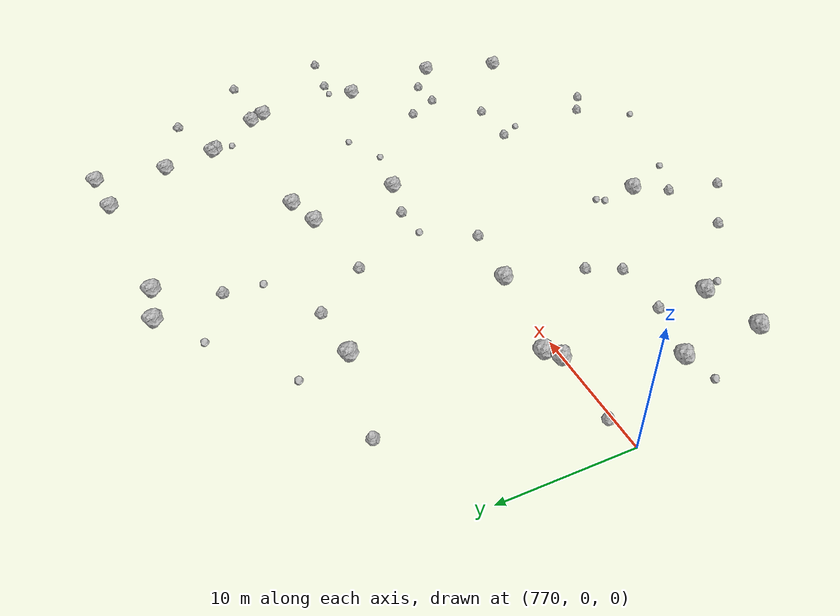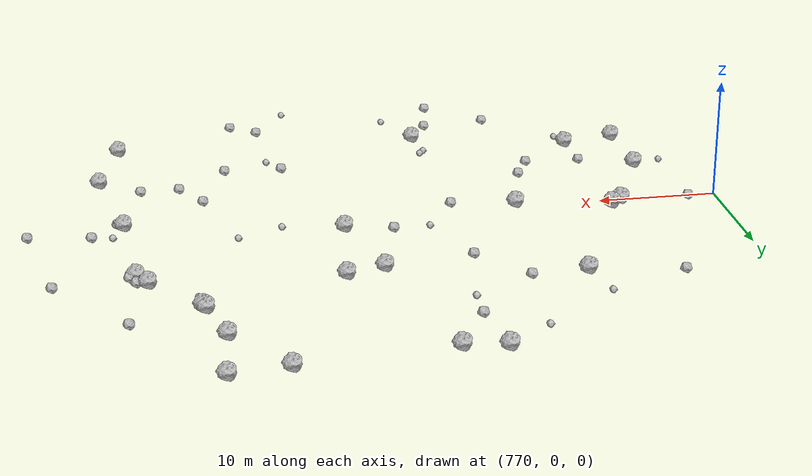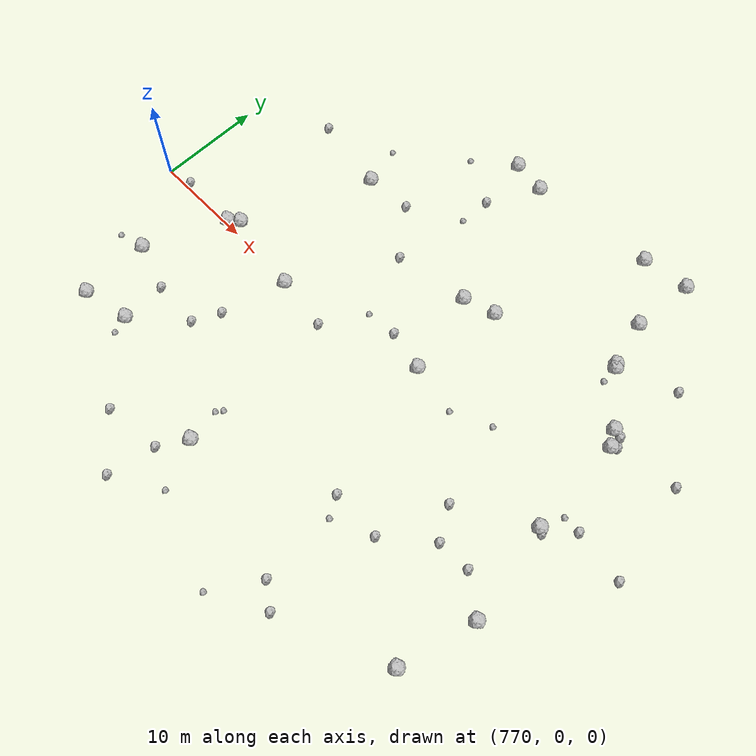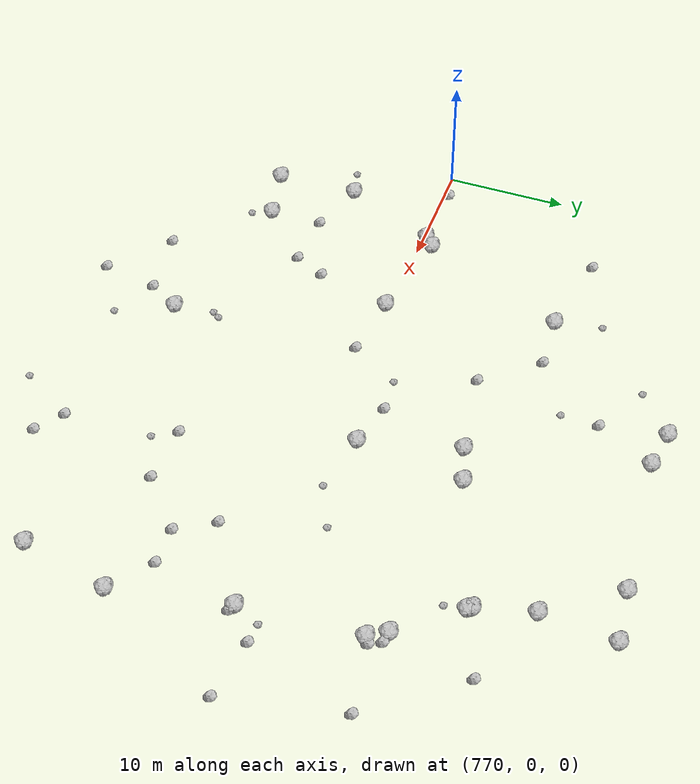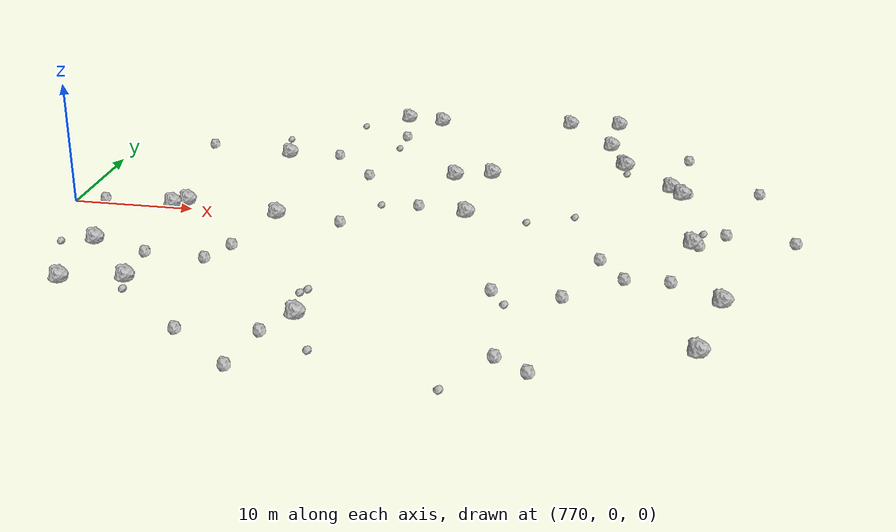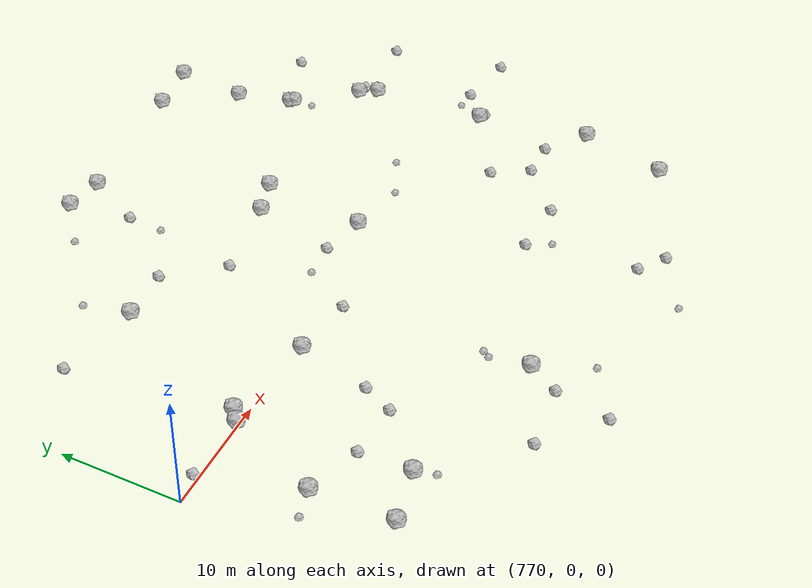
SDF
<sdf version="1.6">
 <world name="default">
  <include><uri>model://sun</uri></include>
  <model name="rock1_20_4">
   <include><uri>model://rock1</uri><pose>813.7713627056665 26.13899055503221 0.5 0 0 0</pose></include>
  </model>
  <model name="rock1_20_5">
   <include><uri>model://rock1</uri><pose>778.3114454848734 0.22923826864044727 0.5 0 0 0</pose></include>
  </model>
  <model name="rock1_20_6">
   <include><uri>model://rock1</uri><pose>814.438334872128 15.437907831486953 0.5 0 0 0</pose></include>
  </model>
  <model name="rock1_20_7">
   <include><uri>model://rock1</uri><pose>813.2151176845068 20.026972824152033 0.5 0 0 0</pose></include>
  </model>
  <model name="rock1_20_8">
   <include><uri>model://rock1</uri><pose>819.9395625124646 -0.7281104815601864 0.5 0 0 0</pose></include>
  </model>
  <model name="rock1_20_9">
   <include><uri>model://rock1</uri><pose>821.6982756609159 -10.221542039794617 0.5 0 0 0</pose></include>
  </model>
  <model name="rock1_20_10">
   <include><uri>model://rock1</uri><pose>809.1556742799443 25.597985797531138 0.5 0 0 0</pose></include>
  </model>
  <model name="rock1_20_11">
   <include><uri>model://rock1</uri><pose>819.8405540531751 -17.543796616545983 0.5 0 0 0</pose></include>
  </model>
  <model name="rock1_20_12">
   <include><uri>model://rock1</uri><pose>793.2585675837314 -16.815717482065427 0.5 0 0 0</pose></include>
  </model>
  <model name="rock1_20_13">
   <include><uri>model://rock1</uri><pose>818.4717028492906 10.512383489422284 0.5 0 0 0</pose></include>
  </model>
  <model name="rock1_20_14">
   <include><uri>model://rock1</uri><pose>796.8391900987673 24.421027063517464 0.5 0 0 0</pose></include>
  </model>
  <model name="rock1_20_15">
   <include><uri>model://rock1</uri><pose>779.3094625826019 1.0473096678902678 0.5 0 0 0</pose></include>
  </model>
  <model name="rock1_20_16">
   <include><uri>model://rock1</uri><pose>774.9542458036296 -7.521811949925425 0.5 0 0 0</pose></include>
  </model>
  <model name="rock1_20_17">
   <include><uri>model://rock1</uri><pose>800.126530686392 10.388197369183956 0.5 0 0 0</pose></include>
  </model>
  <model name="rock1_20_18">
   <include><uri>model://rock1</uri><pose>787.2613133275914 -0.39029255498197557 0.5 0 0 0</pose></include>
  </model>
  <model name="rock1_20_19">
   <include><uri>model://rock1</uri><pose>802.1676297773067 2.3427570630221695 0.5 0 0 0</pose></include>
  </model>
  <model name="rock1_20_20">
   <include><uri>model://rock1</uri><pose>775.1632806393688 -14.318237923209322 0.5 0 0 0</pose></include>
  </model>
  <model name="rock1_20_21">
   <include><uri>model://rock1</uri><pose>814.6285544982172 15.138469836389788 0.5 0 0 0</pose></include>
  </model>
  <model name="rock1_20_22">
   <include><uri>model://rock1</uri><pose>819.3397289066046 9.050023297450188 0.5 0 0 0</pose></include>
  </model>
  <model name="rock1_20_23">
   <include><uri>model://rock1</uri><pose>779.7745142486701 -13.384746823161539 0.5 0 0 0</pose></include>
  </model>
  <model name="rock1_20_24">
   <include><uri>model://rock1</uri><pose>784.6043895242642 13.352611368367654 0.5 0 0 0</pose></include>
  </model>
  <model name="rock1_20_25">
   <include><uri>model://rock1</uri><pose>803.2532424354071 11.300284647176795 0.5 0 0 0</pose></include>
  </model>
  <model name="rock1_20_26">
   <include><uri>model://rock1</uri><pose>793.4824320682043 24.934689388627106 0.5 0 0 0</pose></include>
  </model>
  <model name="rock2_20_0">
   <include><uri>model://rock2</uri><pose>825.6783163487535 10.30823509831967 0.3 0 0 0</pose></include>
  </model>
  <model name="rock2_20_1">
   <include><uri>model://rock2</uri><pose>819.3055280928013 10.376147915853544 0.3 0 0 0</pose></include>
  </model>
  <model name="rock2_20_2">
   <include><uri>model://rock2</uri><pose>813.1300173888998 -4.730443408682717 0.3 0 0 0</pose></include>
  </model>
  <model name="rock2_20_3">
   <include><uri>model://rock2</uri><pose>822.5200199353405 1.3441209296492325 0.3 0 0 0</pose></include>
  </model>
  <model name="rock2_20_4">
   <include><uri>model://rock2</uri><pose>785.9859430169398 -20.08312736993567 0.3 0 0 0</pose></include>
  </model>
  <model name="rock2_20_5">
   <include><uri>model://rock2</uri><pose>777.1085142729979 14.628173453334725 0.3 0 0 0</pose></include>
  </model>
  <model name="rock2_20_6">
   <include><uri>model://rock2</uri><pose>798.1881184968837 3.2422417020468544 0.3 0 0 0</pose></include>
  </model>
  <model name="rock2_20_7">
   <include><uri>model://rock2</uri><pose>792.8006273831058 9.258113624871562 0.3 0 0 0</pose></include>
  </model>
  <model name="rock2_20_8">
   <include><uri>model://rock2</uri><pose>805.83469645487 -11.040279759309282 0.3 0 0 0</pose></include>
  </model>
  <model name="rock2_20_9">
   <include><uri>model://rock2</uri><pose>779.5701931852919 -9.009741931531437 0.3 0 0 0</pose></include>
  </model>
  <model name="rock2_20_10">
   <include><uri>model://rock2</uri><pose>819.7904781764263 9.427108721990045 0.3 0 0 0</pose></include>
  </model>
  <model name="rock2_20_11">
   <include><uri>model://rock2</uri><pose>807.1425815566945 -20.241779797041737 0.3 0 0 0</pose></include>
  </model>
  <model name="rock2_20_12">
   <include><uri>model://rock2</uri><pose>772.4527882082527 0.4704378282973707 0.3 0 0 0</pose></include>
  </model>
  <model name="rock2_20_13">
   <include><uri>model://rock2</uri><pose>810.779761929654 -11.258796759944254 0.3 0 0 0</pose></include>
  </model>
  <model name="rock2_20_14">
   <include><uri>model://rock2</uri><pose>820.1209725693877 17.402594977141682 0.3 0 0 0</pose></include>
  </model>
  <model name="rock2_20_15">
   <include><uri>model://rock2</uri><pose>814.9486075944379 -7.7343523705554205 0.3 0 0 0</pose></include>
  </model>
  <model name="rock2_20_16">
   <include><uri>model://rock2</uri><pose>820.3816406471942 -0.9800073145793462 0.3 0 0 0</pose></include>
  </model>
  <model name="rock2_20_17">
   <include><uri>model://rock2</uri><pose>809.4014668917625 -21.842456301461347 0.3 0 0 0</pose></include>
  </model>
  <model name="rock2_20_18">
   <include><uri>model://rock2</uri><pose>792.6414881635288 -1.0916104862539093 0.3 0 0 0</pose></include>
  </model>
  <model name="rock2_20_19">
   <include><uri>model://rock2</uri><pose>827.6328446514888 0.5886151887769806 0.3 0 0 0</pose></include>
  </model>
  <model name="rock2_20_20">
   <include><uri>model://rock2</uri><pose>789.1512145166122 13.678807188188237 0.3 0 0 0</pose></include>
  </model>
  <model name="rock2_20_21">
   <include><uri>model://rock2</uri><pose>791.5863806723642 -19.45955022153487 0.3 0 0 0</pose></include>
  </model>
  <model name="rock2_20_22">
   <include><uri>model://rock2</uri><pose>818.2147426691993 -7.670809106824436 0.3 0 0 0</pose></include>
  </model>
  <model name="rock2_20_23">
   <include><uri>model://rock2</uri><pose>790.6961695305657 -24.085084467147695 0.3 0 0 0</pose></include>
  </model>
  <model name="rock2_20_24">
   <include><uri>model://rock2</uri><pose>785.557623736604 -6.668622858747998 0.3 0 0 0</pose></include>
  </model>
  <model name="rock2_20_25">
   <include><uri>model://rock2</uri><pose>794.2454849034443 19.630725531530153 0.3 0 0 0</pose></include>
  </model>
  <model name="rock2_20_26">
   <include><uri>model://rock2</uri><pose>784.2924912483799 -9.267935407128228 0.3 0 0 0</pose></include>
  </model>
  <model name="rock3_20_0">
   <include><uri>model://rock3</uri><pose>780.2338962879097 -15.065682952369045 0.2 0 0 0</pose></include>
  </model>
  <model name="rock3_20_1">
   <include><uri>model://rock3</uri><pose>789.7407396333325 22.04109060331576 0.2 0 0 0</pose></include>
  </model>
  <model name="rock3_20_2">
   <include><uri>model://rock3</uri><pose>806.9235655318236 -12.974778560775238 0.2 0 0 0</pose></include>
  </model>
  <model name="rock3_20_3">
   <include><uri>model://rock3</uri><pose>772.4152809137674 -8.115958628613583 0.2 0 0 0</pose></include>
  </model>
  <model name="rock3_20_4">
   <include><uri>model://rock3</uri><pose>795.1201408809899 2.9840686393419773 0.2 0 0 0</pose></include>
  </model>
  <model name="rock3_20_5">
   <include><uri>model://rock3</uri><pose>810.8172137515008 3.0588471270154187 0.2 0 0 0</pose></include>
  </model>
  <model name="rock3_20_6">
   <include><uri>model://rock3</uri><pose>795.271629568296 -21.385917581799234 0.2 0 0 0</pose></include>
  </model>
  <model name="rock3_20_7">
   <include><uri>model://rock3</uri><pose>807.1165211408506 1.3724363452172206 0.2 0 0 0</pose></include>
  </model>
  <model name="rock3_20_8">
   <include><uri>model://rock3</uri><pose>794.0763692321585 16.497421477599175 0.2 0 0 0</pose></include>
  </model>
  <model name="rock3_20_9">
   <include><uri>model://rock3</uri><pose>820.7895904748444 1.415940770009751 0.2 0 0 0</pose></include>
  </model>
  <model name="rock3_20_10">
   <include><uri>model://rock3</uri><pose>804.2759921195919 -24.729671450915657 0.2 0 0 0</pose></include>
  </model>
  <model name="rock3_20_11">
   <include><uri>model://rock3</uri><pose>783.6434093635215 17.194415618467488 0.2 0 0 0</pose></include>
  </model>
  <model name="rock3_20_12">
   <include><uri>model://rock3</uri><pose>792.6759992618053 -13.564601673362258 0.2 0 0 0</pose></include>
  </model>
  <model name="rock3_20_13">
   <include><uri>model://rock3</uri><pose>814.7331049284887 13.410740337443357 0.2 0 0 0</pose></include>
  </model>
  <model name="rock3_20_14">
   <include><uri>model://rock3</uri><pose>793.1066504621548 -12.963693319482317 0.2 0 0 0</pose></include>
  </model>
 </world>
</sdf>
